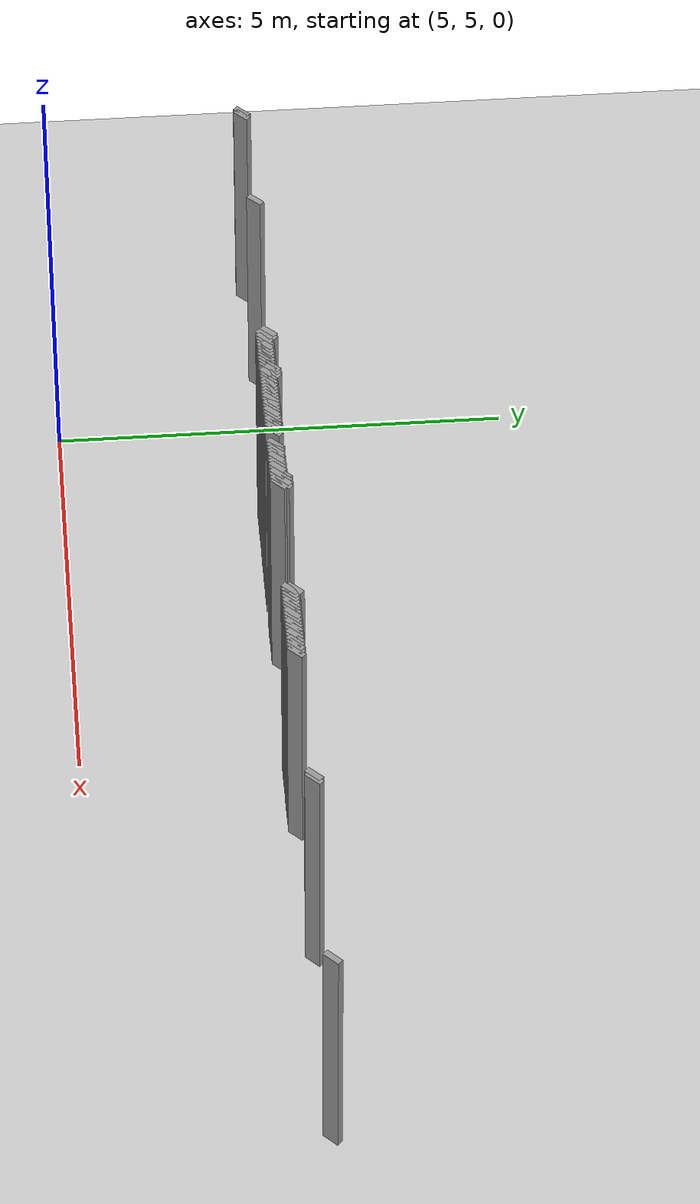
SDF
<sdf version="1.5">
 <world name="default">
  <include><uri>model://ground_plane</uri></include>
  <include><uri>model://sun</uri></include>
  <model name="grey_wall_1556">
   <static>1</static>
   <link name="link">
    <pose>4.2 7.3  1.4 0 0 -0.785398163397</pose>
    <collision name="collision"><geometry><box><size>0.0707106781187 .2  2.8</size></box></geometry></collision>
    <visual name="visual">
     <cast_shadows>0</cast_shadows>
     <geometry><box><size>0.0707106781187 .2  2.8</size></box></geometry>
     <material>
      <script>
       <uri>model://grey_wall/materials/scripts</uri>
       <uri>model://grey_wall/materials/textures</uri>
       <name>vrc/grey_wall</name>
      </script>
     </material>
    </visual>
   </link>
  </model>
  <model name="grey_wall_1557">
   <static>1</static>
   <link name="link">
    <pose>6.35 7.3  1.4 0 0 -0.785398163397</pose>
    <collision name="collision"><geometry><box><size>0.0707106781187 .2  2.8</size></box></geometry></collision>
    <visual name="visual">
     <cast_shadows>0</cast_shadows>
     <geometry><box><size>0.0707106781187 .2  2.8</size></box></geometry>
     <material>
      <script>
       <uri>model://grey_wall/materials/scripts</uri>
       <uri>model://grey_wall/materials/textures</uri>
       <name>vrc/grey_wall</name>
      </script>
     </material>
    </visual>
   </link>
  </model>
  <model name="grey_wall_1558">
   <static>1</static>
   <link name="link">
    <pose>6.4 7.3  1.4 0 0 -0.785398163397</pose>
    <collision name="collision"><geometry><box><size>0.0707106781187 .2  2.8</size></box></geometry></collision>
    <visual name="visual">
     <cast_shadows>0</cast_shadows>
     <geometry><box><size>0.0707106781187 .2  2.8</size></box></geometry>
     <material>
      <script>
       <uri>model://grey_wall/materials/scripts</uri>
       <uri>model://grey_wall/materials/textures</uri>
       <name>vrc/grey_wall</name>
      </script>
     </material>
    </visual>
   </link>
  </model>
  <model name="grey_wall_1559">
   <static>1</static>
   <link name="link">
    <pose>6.9 7.3  1.4 0 0 -0.785398163397</pose>
    <collision name="collision"><geometry><box><size>0.0707106781187 .2  2.8</size></box></geometry></collision>
    <visual name="visual">
     <cast_shadows>0</cast_shadows>
     <geometry><box><size>0.0707106781187 .2  2.8</size></box></geometry>
     <material>
      <script>
       <uri>model://grey_wall/materials/scripts</uri>
       <uri>model://grey_wall/materials/textures</uri>
       <name>vrc/grey_wall</name>
      </script>
     </material>
    </visual>
   </link>
  </model>
  <model name="grey_wall_1560">
   <static>1</static>
   <link name="link">
    <pose>6.95 7.3  1.4 0 0 -0.785398163397</pose>
    <collision name="collision"><geometry><box><size>0.0707106781187 .2  2.8</size></box></geometry></collision>
    <visual name="visual">
     <cast_shadows>0</cast_shadows>
     <geometry><box><size>0.0707106781187 .2  2.8</size></box></geometry>
     <material>
      <script>
       <uri>model://grey_wall/materials/scripts</uri>
       <uri>model://grey_wall/materials/textures</uri>
       <name>vrc/grey_wall</name>
      </script>
     </material>
    </visual>
   </link>
  </model>
  <model name="grey_wall_1561">
   <static>1</static>
   <link name="link">
    <pose>7.0 7.3  1.4 0 0 -0.785398163397</pose>
    <collision name="collision"><geometry><box><size>0.0707106781187 .2  2.8</size></box></geometry></collision>
    <visual name="visual">
     <cast_shadows>0</cast_shadows>
     <geometry><box><size>0.0707106781187 .2  2.8</size></box></geometry>
     <material>
      <script>
       <uri>model://grey_wall/materials/scripts</uri>
       <uri>model://grey_wall/materials/textures</uri>
       <name>vrc/grey_wall</name>
      </script>
     </material>
    </visual>
   </link>
  </model>
  <model name="grey_wall_1562">
   <static>1</static>
   <link name="link">
    <pose>8.55 7.3  1.4 0 0 -0.785398163397</pose>
    <collision name="collision"><geometry><box><size>0.0707106781187 .2  2.8</size></box></geometry></collision>
    <visual name="visual">
     <cast_shadows>0</cast_shadows>
     <geometry><box><size>0.0707106781187 .2  2.8</size></box></geometry>
     <material>
      <script>
       <uri>model://grey_wall/materials/scripts</uri>
       <uri>model://grey_wall/materials/textures</uri>
       <name>vrc/grey_wall</name>
      </script>
     </material>
    </visual>
   </link>
  </model>
  <model name="grey_wall_1563">
   <static>1</static>
   <link name="link">
    <pose>8.6 7.3  1.4 0 0 -0.785398163397</pose>
    <collision name="collision"><geometry><box><size>0.0707106781187 .2  2.8</size></box></geometry></collision>
    <visual name="visual">
     <cast_shadows>0</cast_shadows>
     <geometry><box><size>0.0707106781187 .2  2.8</size></box></geometry>
     <material>
      <script>
       <uri>model://grey_wall/materials/scripts</uri>
       <uri>model://grey_wall/materials/textures</uri>
       <name>vrc/grey_wall</name>
      </script>
     </material>
    </visual>
   </link>
  </model>
  <model name="grey_wall_1564">
   <static>1</static>
   <link name="link">
    <pose>8.65 7.3  1.4 0 0 -0.785398163397</pose>
    <collision name="collision"><geometry><box><size>0.0707106781187 .2  2.8</size></box></geometry></collision>
    <visual name="visual">
     <cast_shadows>0</cast_shadows>
     <geometry><box><size>0.0707106781187 .2  2.8</size></box></geometry>
     <material>
      <script>
       <uri>model://grey_wall/materials/scripts</uri>
       <uri>model://grey_wall/materials/textures</uri>
       <name>vrc/grey_wall</name>
      </script>
     </material>
    </visual>
   </link>
  </model>
  <model name="grey_wall_1565">
   <static>1</static>
   <link name="link">
    <pose>8.7 7.3  1.4 0 0 -0.785398163397</pose>
    <collision name="collision"><geometry><box><size>0.0707106781187 .2  2.8</size></box></geometry></collision>
    <visual name="visual">
     <cast_shadows>0</cast_shadows>
     <geometry><box><size>0.0707106781187 .2  2.8</size></box></geometry>
     <material>
      <script>
       <uri>model://grey_wall/materials/scripts</uri>
       <uri>model://grey_wall/materials/textures</uri>
       <name>vrc/grey_wall</name>
      </script>
     </material>
    </visual>
   </link>
  </model>
  <model name="grey_wall_1566">
   <static>1</static>
   <link name="link">
    <pose>10.25 7.3  1.4 0 0 -0.785398163397</pose>
    <collision name="collision"><geometry><box><size>0.0707106781187 .2  2.8</size></box></geometry></collision>
    <visual name="visual">
     <cast_shadows>0</cast_shadows>
     <geometry><box><size>0.0707106781187 .2  2.8</size></box></geometry>
     <material>
      <script>
       <uri>model://grey_wall/materials/scripts</uri>
       <uri>model://grey_wall/materials/textures</uri>
       <name>vrc/grey_wall</name>
      </script>
     </material>
    </visual>
   </link>
  </model>
  <model name="grey_wall_1567">
   <static>1</static>
   <link name="link">
    <pose>12.85 7.3  1.4 0 0 -0.785398163397</pose>
    <collision name="collision"><geometry><box><size>0.0707106781187 .2  2.8</size></box></geometry></collision>
    <visual name="visual">
     <cast_shadows>0</cast_shadows>
     <geometry><box><size>0.0707106781187 .2  2.8</size></box></geometry>
     <material>
      <script>
       <uri>model://grey_wall/materials/scripts</uri>
       <uri>model://grey_wall/materials/textures</uri>
       <name>vrc/grey_wall</name>
      </script>
     </material>
    </visual>
   </link>
  </model>
  <model name="grey_wall_1568">
   <static>1</static>
   <link name="link">
    <pose>12.9 7.3  1.4 0 0 -0.785398163397</pose>
    <collision name="collision"><geometry><box><size>0.0707106781187 .2  2.8</size></box></geometry></collision>
    <visual name="visual">
     <cast_shadows>0</cast_shadows>
     <geometry><box><size>0.0707106781187 .2  2.8</size></box></geometry>
     <material>
      <script>
       <uri>model://grey_wall/materials/scripts</uri>
       <uri>model://grey_wall/materials/textures</uri>
       <name>vrc/grey_wall</name>
      </script>
     </material>
    </visual>
   </link>
  </model>
  <model name="grey_wall_1569">
   <static>1</static>
   <link name="link">
    <pose>15.25 7.3  1.4 0 0 -0.785398163397</pose>
    <collision name="collision"><geometry><box><size>0.0707106781187 .2  2.8</size></box></geometry></collision>
    <visual name="visual">
     <cast_shadows>0</cast_shadows>
     <geometry><box><size>0.0707106781187 .2  2.8</size></box></geometry>
     <material>
      <script>
       <uri>model://grey_wall/materials/scripts</uri>
       <uri>model://grey_wall/materials/textures</uri>
       <name>vrc/grey_wall</name>
      </script>
     </material>
    </visual>
   </link>
  </model>
  <model name="grey_wall_1570">
   <static>1</static>
   <link name="link">
    <pose>2.7 7.25  1.4 0 0 -0.785398163397</pose>
    <collision name="collision"><geometry><box><size>0.0707106781187 .2  2.8</size></box></geometry></collision>
    <visual name="visual">
     <cast_shadows>0</cast_shadows>
     <geometry><box><size>0.0707106781187 .2  2.8</size></box></geometry>
     <material>
      <script>
       <uri>model://grey_wall/materials/scripts</uri>
       <uri>model://grey_wall/materials/textures</uri>
       <name>vrc/grey_wall</name>
      </script>
     </material>
    </visual>
   </link>
  </model>
  <model name="grey_wall_1571">
   <static>1</static>
   <link name="link">
    <pose>2.75 7.25  1.4 0 0 -0.785398163397</pose>
    <collision name="collision"><geometry><box><size>0.0707106781187 .2  2.8</size></box></geometry></collision>
    <visual name="visual">
     <cast_shadows>0</cast_shadows>
     <geometry><box><size>0.0707106781187 .2  2.8</size></box></geometry>
     <material>
      <script>
       <uri>model://grey_wall/materials/scripts</uri>
       <uri>model://grey_wall/materials/textures</uri>
       <name>vrc/grey_wall</name>
      </script>
     </material>
    </visual>
   </link>
  </model>
  <model name="grey_wall_1572">
   <static>1</static>
   <link name="link">
    <pose>6.4 7.25  1.4 0 0 -0.785398163397</pose>
    <collision name="collision"><geometry><box><size>0.0707106781187 .2  2.8</size></box></geometry></collision>
    <visual name="visual">
     <cast_shadows>0</cast_shadows>
     <geometry><box><size>0.0707106781187 .2  2.8</size></box></geometry>
     <material>
      <script>
       <uri>model://grey_wall/materials/scripts</uri>
       <uri>model://grey_wall/materials/textures</uri>
       <name>vrc/grey_wall</name>
      </script>
     </material>
    </visual>
   </link>
  </model>
  <model name="grey_wall_1573">
   <static>1</static>
   <link name="link">
    <pose>6.45 7.25  1.4 0 0 -0.785398163397</pose>
    <collision name="collision"><geometry><box><size>0.0707106781187 .2  2.8</size></box></geometry></collision>
    <visual name="visual">
     <cast_shadows>0</cast_shadows>
     <geometry><box><size>0.0707106781187 .2  2.8</size></box></geometry>
     <material>
      <script>
       <uri>model://grey_wall/materials/scripts</uri>
       <uri>model://grey_wall/materials/textures</uri>
       <name>vrc/grey_wall</name>
      </script>
     </material>
    </visual>
   </link>
  </model>
  <model name="grey_wall_1574">
   <static>1</static>
   <link name="link">
    <pose>6.5 7.25  1.4 0 0 -0.785398163397</pose>
    <collision name="collision"><geometry><box><size>0.0707106781187 .2  2.8</size></box></geometry></collision>
    <visual name="visual">
     <cast_shadows>0</cast_shadows>
     <geometry><box><size>0.0707106781187 .2  2.8</size></box></geometry>
     <material>
      <script>
       <uri>model://grey_wall/materials/scripts</uri>
       <uri>model://grey_wall/materials/textures</uri>
       <name>vrc/grey_wall</name>
      </script>
     </material>
    </visual>
   </link>
  </model>
  <model name="grey_wall_1575">
   <static>1</static>
   <link name="link">
    <pose>6.55 7.25  1.4 0 0 -0.785398163397</pose>
    <collision name="collision"><geometry><box><size>0.0707106781187 .2  2.8</size></box></geometry></collision>
    <visual name="visual">
     <cast_shadows>0</cast_shadows>
     <geometry><box><size>0.0707106781187 .2  2.8</size></box></geometry>
     <material>
      <script>
       <uri>model://grey_wall/materials/scripts</uri>
       <uri>model://grey_wall/materials/textures</uri>
       <name>vrc/grey_wall</name>
      </script>
     </material>
    </visual>
   </link>
  </model>
  <model name="grey_wall_1576">
   <static>1</static>
   <link name="link">
    <pose>6.6 7.25  1.4 0 0 -0.785398163397</pose>
    <collision name="collision"><geometry><box><size>0.0707106781187 .2  2.8</size></box></geometry></collision>
    <visual name="visual">
     <cast_shadows>0</cast_shadows>
     <geometry><box><size>0.0707106781187 .2  2.8</size></box></geometry>
     <material>
      <script>
       <uri>model://grey_wall/materials/scripts</uri>
       <uri>model://grey_wall/materials/textures</uri>
       <name>vrc/grey_wall</name>
      </script>
     </material>
    </visual>
   </link>
  </model>
  <model name="grey_wall_1577">
   <static>1</static>
   <link name="link">
    <pose>6.65 7.25  1.4 0 0 -0.785398163397</pose>
    <collision name="collision"><geometry><box><size>0.0707106781187 .2  2.8</size></box></geometry></collision>
    <visual name="visual">
     <cast_shadows>0</cast_shadows>
     <geometry><box><size>0.0707106781187 .2  2.8</size></box></geometry>
     <material>
      <script>
       <uri>model://grey_wall/materials/scripts</uri>
       <uri>model://grey_wall/materials/textures</uri>
       <name>vrc/grey_wall</name>
      </script>
     </material>
    </visual>
   </link>
  </model>
  <model name="grey_wall_1578">
   <static>1</static>
   <link name="link">
    <pose>6.7 7.25  1.4 0 0 -0.785398163397</pose>
    <collision name="collision"><geometry><box><size>0.0707106781187 .2  2.8</size></box></geometry></collision>
    <visual name="visual">
     <cast_shadows>0</cast_shadows>
     <geometry><box><size>0.0707106781187 .2  2.8</size></box></geometry>
     <material>
      <script>
       <uri>model://grey_wall/materials/scripts</uri>
       <uri>model://grey_wall/materials/textures</uri>
       <name>vrc/grey_wall</name>
      </script>
     </material>
    </visual>
   </link>
  </model>
  <model name="grey_wall_1579">
   <static>1</static>
   <link name="link">
    <pose>6.75 7.25  1.4 0 0 -0.785398163397</pose>
    <collision name="collision"><geometry><box><size>0.0707106781187 .2  2.8</size></box></geometry></collision>
    <visual name="visual">
     <cast_shadows>0</cast_shadows>
     <geometry><box><size>0.0707106781187 .2  2.8</size></box></geometry>
     <material>
      <script>
       <uri>model://grey_wall/materials/scripts</uri>
       <uri>model://grey_wall/materials/textures</uri>
       <name>vrc/grey_wall</name>
      </script>
     </material>
    </visual>
   </link>
  </model>
  <model name="grey_wall_1580">
   <static>1</static>
   <link name="link">
    <pose>6.8 7.25  1.4 0 0 -0.785398163397</pose>
    <collision name="collision"><geometry><box><size>0.0707106781187 .2  2.8</size></box></geometry></collision>
    <visual name="visual">
     <cast_shadows>0</cast_shadows>
     <geometry><box><size>0.0707106781187 .2  2.8</size></box></geometry>
     <material>
      <script>
       <uri>model://grey_wall/materials/scripts</uri>
       <uri>model://grey_wall/materials/textures</uri>
       <name>vrc/grey_wall</name>
      </script>
     </material>
    </visual>
   </link>
  </model>
  <model name="grey_wall_1581">
   <static>1</static>
   <link name="link">
    <pose>6.85 7.25  1.4 0 0 -0.785398163397</pose>
    <collision name="collision"><geometry><box><size>0.0707106781187 .2  2.8</size></box></geometry></collision>
    <visual name="visual">
     <cast_shadows>0</cast_shadows>
     <geometry><box><size>0.0707106781187 .2  2.8</size></box></geometry>
     <material>
      <script>
       <uri>model://grey_wall/materials/scripts</uri>
       <uri>model://grey_wall/materials/textures</uri>
       <name>vrc/grey_wall</name>
      </script>
     </material>
    </visual>
   </link>
  </model>
  <model name="grey_wall_1582">
   <static>1</static>
   <link name="link">
    <pose>6.9 7.25  1.4 0 0 -0.785398163397</pose>
    <collision name="collision"><geometry><box><size>0.0707106781187 .2  2.8</size></box></geometry></collision>
    <visual name="visual">
     <cast_shadows>0</cast_shadows>
     <geometry><box><size>0.0707106781187 .2  2.8</size></box></geometry>
     <material>
      <script>
       <uri>model://grey_wall/materials/scripts</uri>
       <uri>model://grey_wall/materials/textures</uri>
       <name>vrc/grey_wall</name>
      </script>
     </material>
    </visual>
   </link>
  </model>
  <model name="grey_wall_1583">
   <static>1</static>
   <link name="link">
    <pose>7.0 7.25  1.4 0 0 -0.785398163397</pose>
    <collision name="collision"><geometry><box><size>0.0707106781187 .2  2.8</size></box></geometry></collision>
    <visual name="visual">
     <cast_shadows>0</cast_shadows>
     <geometry><box><size>0.0707106781187 .2  2.8</size></box></geometry>
     <material>
      <script>
       <uri>model://grey_wall/materials/scripts</uri>
       <uri>model://grey_wall/materials/textures</uri>
       <name>vrc/grey_wall</name>
      </script>
     </material>
    </visual>
   </link>
  </model>
  <model name="grey_wall_1584">
   <static>1</static>
   <link name="link">
    <pose>7.05 7.25  1.4 0 0 -0.785398163397</pose>
    <collision name="collision"><geometry><box><size>0.0707106781187 .2  2.8</size></box></geometry></collision>
    <visual name="visual">
     <cast_shadows>0</cast_shadows>
     <geometry><box><size>0.0707106781187 .2  2.8</size></box></geometry>
     <material>
      <script>
       <uri>model://grey_wall/materials/scripts</uri>
       <uri>model://grey_wall/materials/textures</uri>
       <name>vrc/grey_wall</name>
      </script>
     </material>
    </visual>
   </link>
  </model>
  <model name="grey_wall_1585">
   <static>1</static>
   <link name="link">
    <pose>7.1 7.25  1.4 0 0 -0.785398163397</pose>
    <collision name="collision"><geometry><box><size>0.0707106781187 .2  2.8</size></box></geometry></collision>
    <visual name="visual">
     <cast_shadows>0</cast_shadows>
     <geometry><box><size>0.0707106781187 .2  2.8</size></box></geometry>
     <material>
      <script>
       <uri>model://grey_wall/materials/scripts</uri>
       <uri>model://grey_wall/materials/textures</uri>
       <name>vrc/grey_wall</name>
      </script>
     </material>
    </visual>
   </link>
  </model>
  <model name="grey_wall_1586">
   <static>1</static>
   <link name="link">
    <pose>7.15 7.25  1.4 0 0 -0.785398163397</pose>
    <collision name="collision"><geometry><box><size>0.0707106781187 .2  2.8</size></box></geometry></collision>
    <visual name="visual">
     <cast_shadows>0</cast_shadows>
     <geometry><box><size>0.0707106781187 .2  2.8</size></box></geometry>
     <material>
      <script>
       <uri>model://grey_wall/materials/scripts</uri>
       <uri>model://grey_wall/materials/textures</uri>
       <name>vrc/grey_wall</name>
      </script>
     </material>
    </visual>
   </link>
  </model>
  <model name="grey_wall_1587">
   <static>1</static>
   <link name="link">
    <pose>7.2 7.25  1.4 0 0 -0.785398163397</pose>
    <collision name="collision"><geometry><box><size>0.0707106781187 .2  2.8</size></box></geometry></collision>
    <visual name="visual">
     <cast_shadows>0</cast_shadows>
     <geometry><box><size>0.0707106781187 .2  2.8</size></box></geometry>
     <material>
      <script>
       <uri>model://grey_wall/materials/scripts</uri>
       <uri>model://grey_wall/materials/textures</uri>
       <name>vrc/grey_wall</name>
      </script>
     </material>
    </visual>
   </link>
  </model>
  <model name="grey_wall_1588">
   <static>1</static>
   <link name="link">
    <pose>7.25 7.25  1.4 0 0 -0.785398163397</pose>
    <collision name="collision"><geometry><box><size>0.0707106781187 .2  2.8</size></box></geometry></collision>
    <visual name="visual">
     <cast_shadows>0</cast_shadows>
     <geometry><box><size>0.0707106781187 .2  2.8</size></box></geometry>
     <material>
      <script>
       <uri>model://grey_wall/materials/scripts</uri>
       <uri>model://grey_wall/materials/textures</uri>
       <name>vrc/grey_wall</name>
      </script>
     </material>
    </visual>
   </link>
  </model>
  <model name="grey_wall_1589">
   <static>1</static>
   <link name="link">
    <pose>7.3 7.25  1.4 0 0 -0.785398163397</pose>
    <collision name="collision"><geometry><box><size>0.0707106781187 .2  2.8</size></box></geometry></collision>
    <visual name="visual">
     <cast_shadows>0</cast_shadows>
     <geometry><box><size>0.0707106781187 .2  2.8</size></box></geometry>
     <material>
      <script>
       <uri>model://grey_wall/materials/scripts</uri>
       <uri>model://grey_wall/materials/textures</uri>
       <name>vrc/grey_wall</name>
      </script>
     </material>
    </visual>
   </link>
  </model>
  <model name="grey_wall_1590">
   <static>1</static>
   <link name="link">
    <pose>7.35 7.25  1.4 0 0 -0.785398163397</pose>
    <collision name="collision"><geometry><box><size>0.0707106781187 .2  2.8</size></box></geometry></collision>
    <visual name="visual">
     <cast_shadows>0</cast_shadows>
     <geometry><box><size>0.0707106781187 .2  2.8</size></box></geometry>
     <material>
      <script>
       <uri>model://grey_wall/materials/scripts</uri>
       <uri>model://grey_wall/materials/textures</uri>
       <name>vrc/grey_wall</name>
      </script>
     </material>
    </visual>
   </link>
  </model>
  <model name="grey_wall_1591">
   <static>1</static>
   <link name="link">
    <pose>7.4 7.25  1.4 0 0 -0.785398163397</pose>
    <collision name="collision"><geometry><box><size>0.0707106781187 .2  2.8</size></box></geometry></collision>
    <visual name="visual">
     <cast_shadows>0</cast_shadows>
     <geometry><box><size>0.0707106781187 .2  2.8</size></box></geometry>
     <material>
      <script>
       <uri>model://grey_wall/materials/scripts</uri>
       <uri>model://grey_wall/materials/textures</uri>
       <name>vrc/grey_wall</name>
      </script>
     </material>
    </visual>
   </link>
  </model>
  <model name="grey_wall_1592">
   <static>1</static>
   <link name="link">
    <pose>7.45 7.25  1.4 0 0 -0.785398163397</pose>
    <collision name="collision"><geometry><box><size>0.0707106781187 .2  2.8</size></box></geometry></collision>
    <visual name="visual">
     <cast_shadows>0</cast_shadows>
     <geometry><box><size>0.0707106781187 .2  2.8</size></box></geometry>
     <material>
      <script>
       <uri>model://grey_wall/materials/scripts</uri>
       <uri>model://grey_wall/materials/textures</uri>
       <name>vrc/grey_wall</name>
      </script>
     </material>
    </visual>
   </link>
  </model>
  <model name="grey_wall_1593">
   <static>1</static>
   <link name="link">
    <pose>7.5 7.25  1.4 0 0 -0.785398163397</pose>
    <collision name="collision"><geometry><box><size>0.0707106781187 .2  2.8</size></box></geometry></collision>
    <visual name="visual">
     <cast_shadows>0</cast_shadows>
     <geometry><box><size>0.0707106781187 .2  2.8</size></box></geometry>
     <material>
      <script>
       <uri>model://grey_wall/materials/scripts</uri>
       <uri>model://grey_wall/materials/textures</uri>
       <name>vrc/grey_wall</name>
      </script>
     </material>
    </visual>
   </link>
  </model>
  <model name="grey_wall_1594">
   <static>1</static>
   <link name="link">
    <pose>7.55 7.25  1.4 0 0 -0.785398163397</pose>
    <collision name="collision"><geometry><box><size>0.0707106781187 .2  2.8</size></box></geometry></collision>
    <visual name="visual">
     <cast_shadows>0</cast_shadows>
     <geometry><box><size>0.0707106781187 .2  2.8</size></box></geometry>
     <material>
      <script>
       <uri>model://grey_wall/materials/scripts</uri>
       <uri>model://grey_wall/materials/textures</uri>
       <name>vrc/grey_wall</name>
      </script>
     </material>
    </visual>
   </link>
  </model>
  <model name="grey_wall_1595">
   <static>1</static>
   <link name="link">
    <pose>7.6 7.25  1.4 0 0 -0.785398163397</pose>
    <collision name="collision"><geometry><box><size>0.0707106781187 .2  2.8</size></box></geometry></collision>
    <visual name="visual">
     <cast_shadows>0</cast_shadows>
     <geometry><box><size>0.0707106781187 .2  2.8</size></box></geometry>
     <material>
      <script>
       <uri>model://grey_wall/materials/scripts</uri>
       <uri>model://grey_wall/materials/textures</uri>
       <name>vrc/grey_wall</name>
      </script>
     </material>
    </visual>
   </link>
  </model>
  <model name="grey_wall_1596">
   <static>1</static>
   <link name="link">
    <pose>7.65 7.25  1.4 0 0 -0.785398163397</pose>
    <collision name="collision"><geometry><box><size>0.0707106781187 .2  2.8</size></box></geometry></collision>
    <visual name="visual">
     <cast_shadows>0</cast_shadows>
     <geometry><box><size>0.0707106781187 .2  2.8</size></box></geometry>
     <material>
      <script>
       <uri>model://grey_wall/materials/scripts</uri>
       <uri>model://grey_wall/materials/textures</uri>
       <name>vrc/grey_wall</name>
      </script>
     </material>
    </visual>
   </link>
  </model>
  <model name="grey_wall_1597">
   <static>1</static>
   <link name="link">
    <pose>7.7 7.25  1.4 0 0 -0.785398163397</pose>
    <collision name="collision"><geometry><box><size>0.0707106781187 .2  2.8</size></box></geometry></collision>
    <visual name="visual">
     <cast_shadows>0</cast_shadows>
     <geometry><box><size>0.0707106781187 .2  2.8</size></box></geometry>
     <material>
      <script>
       <uri>model://grey_wall/materials/scripts</uri>
       <uri>model://grey_wall/materials/textures</uri>
       <name>vrc/grey_wall</name>
      </script>
     </material>
    </visual>
   </link>
  </model>
  <model name="grey_wall_1598">
   <static>1</static>
   <link name="link">
    <pose>7.75 7.25  1.4 0 0 -0.785398163397</pose>
    <collision name="collision"><geometry><box><size>0.0707106781187 .2  2.8</size></box></geometry></collision>
    <visual name="visual">
     <cast_shadows>0</cast_shadows>
     <geometry><box><size>0.0707106781187 .2  2.8</size></box></geometry>
     <material>
      <script>
       <uri>model://grey_wall/materials/scripts</uri>
       <uri>model://grey_wall/materials/textures</uri>
       <name>vrc/grey_wall</name>
      </script>
     </material>
    </visual>
   </link>
  </model>
  <model name="grey_wall_1599">
   <static>1</static>
   <link name="link">
    <pose>7.8 7.25  1.4 0 0 -0.785398163397</pose>
    <collision name="collision"><geometry><box><size>0.0707106781187 .2  2.8</size></box></geometry></collision>
    <visual name="visual">
     <cast_shadows>0</cast_shadows>
     <geometry><box><size>0.0707106781187 .2  2.8</size></box></geometry>
     <material>
      <script>
       <uri>model://grey_wall/materials/scripts</uri>
       <uri>model://grey_wall/materials/textures</uri>
       <name>vrc/grey_wall</name>
      </script>
     </material>
    </visual>
   </link>
  </model>
  <model name="grey_wall_1600">
   <static>1</static>
   <link name="link">
    <pose>7.85 7.25  1.4 0 0 -0.785398163397</pose>
    <collision name="collision"><geometry><box><size>0.0707106781187 .2  2.8</size></box></geometry></collision>
    <visual name="visual">
     <cast_shadows>0</cast_shadows>
     <geometry><box><size>0.0707106781187 .2  2.8</size></box></geometry>
     <material>
      <script>
       <uri>model://grey_wall/materials/scripts</uri>
       <uri>model://grey_wall/materials/textures</uri>
       <name>vrc/grey_wall</name>
      </script>
     </material>
    </visual>
   </link>
  </model>
  <model name="grey_wall_1601">
   <static>1</static>
   <link name="link">
    <pose>7.9 7.25  1.4 0 0 -0.785398163397</pose>
    <collision name="collision"><geometry><box><size>0.0707106781187 .2  2.8</size></box></geometry></collision>
    <visual name="visual">
     <cast_shadows>0</cast_shadows>
     <geometry><box><size>0.0707106781187 .2  2.8</size></box></geometry>
     <material>
      <script>
       <uri>model://grey_wall/materials/scripts</uri>
       <uri>model://grey_wall/materials/textures</uri>
       <name>vrc/grey_wall</name>
      </script>
     </material>
    </visual>
   </link>
  </model>
  <model name="grey_wall_1602">
   <static>1</static>
   <link name="link">
    <pose>8.1 7.25  1.4 0 0 -0.785398163397</pose>
    <collision name="collision"><geometry><box><size>0.0707106781187 .2  2.8</size></box></geometry></collision>
    <visual name="visual">
     <cast_shadows>0</cast_shadows>
     <geometry><box><size>0.0707106781187 .2  2.8</size></box></geometry>
     <material>
      <script>
       <uri>model://grey_wall/materials/scripts</uri>
       <uri>model://grey_wall/materials/textures</uri>
       <name>vrc/grey_wall</name>
      </script>
     </material>
    </visual>
   </link>
  </model>
  <model name="grey_wall_1603">
   <static>1</static>
   <link name="link">
    <pose>8.15 7.25  1.4 0 0 -0.785398163397</pose>
    <collision name="collision"><geometry><box><size>0.0707106781187 .2  2.8</size></box></geometry></collision>
    <visual name="visual">
     <cast_shadows>0</cast_shadows>
     <geometry><box><size>0.0707106781187 .2  2.8</size></box></geometry>
     <material>
      <script>
       <uri>model://grey_wall/materials/scripts</uri>
       <uri>model://grey_wall/materials/textures</uri>
       <name>vrc/grey_wall</name>
      </script>
     </material>
    </visual>
   </link>
  </model>
  <model name="grey_wall_1604">
   <static>1</static>
   <link name="link">
    <pose>8.2 7.25  1.4 0 0 -0.785398163397</pose>
    <collision name="collision"><geometry><box><size>0.0707106781187 .2  2.8</size></box></geometry></collision>
    <visual name="visual">
     <cast_shadows>0</cast_shadows>
     <geometry><box><size>0.0707106781187 .2  2.8</size></box></geometry>
     <material>
      <script>
       <uri>model://grey_wall/materials/scripts</uri>
       <uri>model://grey_wall/materials/textures</uri>
       <name>vrc/grey_wall</name>
      </script>
     </material>
    </visual>
   </link>
  </model>
  <model name="grey_wall_1605">
   <static>1</static>
   <link name="link">
    <pose>8.25 7.25  1.4 0 0 -0.785398163397</pose>
    <collision name="collision"><geometry><box><size>0.0707106781187 .2  2.8</size></box></geometry></collision>
    <visual name="visual">
     <cast_shadows>0</cast_shadows>
     <geometry><box><size>0.0707106781187 .2  2.8</size></box></geometry>
     <material>
      <script>
       <uri>model://grey_wall/materials/scripts</uri>
       <uri>model://grey_wall/materials/textures</uri>
       <name>vrc/grey_wall</name>
      </script>
     </material>
    </visual>
   </link>
  </model>
  <model name="grey_wall_1606">
   <static>1</static>
   <link name="link">
    <pose>8.3 7.25  1.4 0 0 -0.785398163397</pose>
    <collision name="collision"><geometry><box><size>0.0707106781187 .2  2.8</size></box></geometry></collision>
    <visual name="visual">
     <cast_shadows>0</cast_shadows>
     <geometry><box><size>0.0707106781187 .2  2.8</size></box></geometry>
     <material>
      <script>
       <uri>model://grey_wall/materials/scripts</uri>
       <uri>model://grey_wall/materials/textures</uri>
       <name>vrc/grey_wall</name>
      </script>
     </material>
    </visual>
   </link>
  </model>
  <model name="grey_wall_1607">
   <static>1</static>
   <link name="link">
    <pose>8.35 7.25  1.4 0 0 -0.785398163397</pose>
    <collision name="collision"><geometry><box><size>0.0707106781187 .2  2.8</size></box></geometry></collision>
    <visual name="visual">
     <cast_shadows>0</cast_shadows>
     <geometry><box><size>0.0707106781187 .2  2.8</size></box></geometry>
     <material>
      <script>
       <uri>model://grey_wall/materials/scripts</uri>
       <uri>model://grey_wall/materials/textures</uri>
       <name>vrc/grey_wall</name>
      </script>
     </material>
    </visual>
   </link>
  </model>
  <model name="grey_wall_1608">
   <static>1</static>
   <link name="link">
    <pose>8.4 7.25  1.4 0 0 -0.785398163397</pose>
    <collision name="collision"><geometry><box><size>0.0707106781187 .2  2.8</size></box></geometry></collision>
    <visual name="visual">
     <cast_shadows>0</cast_shadows>
     <geometry><box><size>0.0707106781187 .2  2.8</size></box></geometry>
     <material>
      <script>
       <uri>model://grey_wall/materials/scripts</uri>
       <uri>model://grey_wall/materials/textures</uri>
       <name>vrc/grey_wall</name>
      </script>
     </material>
    </visual>
   </link>
  </model>
  <model name="grey_wall_1609">
   <static>1</static>
   <link name="link">
    <pose>8.45 7.25  1.4 0 0 -0.785398163397</pose>
    <collision name="collision"><geometry><box><size>0.0707106781187 .2  2.8</size></box></geometry></collision>
    <visual name="visual">
     <cast_shadows>0</cast_shadows>
     <geometry><box><size>0.0707106781187 .2  2.8</size></box></geometry>
     <material>
      <script>
       <uri>model://grey_wall/materials/scripts</uri>
       <uri>model://grey_wall/materials/textures</uri>
       <name>vrc/grey_wall</name>
      </script>
     </material>
    </visual>
   </link>
  </model>
  <model name="grey_wall_1610">
   <static>1</static>
   <link name="link">
    <pose>8.5 7.25  1.4 0 0 -0.785398163397</pose>
    <collision name="collision"><geometry><box><size>0.0707106781187 .2  2.8</size></box></geometry></collision>
    <visual name="visual">
     <cast_shadows>0</cast_shadows>
     <geometry><box><size>0.0707106781187 .2  2.8</size></box></geometry>
     <material>
      <script>
       <uri>model://grey_wall/materials/scripts</uri>
       <uri>model://grey_wall/materials/textures</uri>
       <name>vrc/grey_wall</name>
      </script>
     </material>
    </visual>
   </link>
  </model>
  <model name="grey_wall_1611">
   <static>1</static>
   <link name="link">
    <pose>8.55 7.25  1.4 0 0 -0.785398163397</pose>
    <collision name="collision"><geometry><box><size>0.0707106781187 .2  2.8</size></box></geometry></collision>
    <visual name="visual">
     <cast_shadows>0</cast_shadows>
     <geometry><box><size>0.0707106781187 .2  2.8</size></box></geometry>
     <material>
      <script>
       <uri>model://grey_wall/materials/scripts</uri>
       <uri>model://grey_wall/materials/textures</uri>
       <name>vrc/grey_wall</name>
      </script>
     </material>
    </visual>
   </link>
  </model>
  <model name="grey_wall_1612">
   <static>1</static>
   <link name="link">
    <pose>8.6 7.25  1.4 0 0 -0.785398163397</pose>
    <collision name="collision"><geometry><box><size>0.0707106781187 .2  2.8</size></box></geometry></collision>
    <visual name="visual">
     <cast_shadows>0</cast_shadows>
     <geometry><box><size>0.0707106781187 .2  2.8</size></box></geometry>
     <material>
      <script>
       <uri>model://grey_wall/materials/scripts</uri>
       <uri>model://grey_wall/materials/textures</uri>
       <name>vrc/grey_wall</name>
      </script>
     </material>
    </visual>
   </link>
  </model>
  <model name="grey_wall_1613">
   <static>1</static>
   <link name="link">
    <pose>8.65 7.25  1.4 0 0 -0.785398163397</pose>
    <collision name="collision"><geometry><box><size>0.0707106781187 .2  2.8</size></box></geometry></collision>
    <visual name="visual">
     <cast_shadows>0</cast_shadows>
     <geometry><box><size>0.0707106781187 .2  2.8</size></box></geometry>
     <material>
      <script>
       <uri>model://grey_wall/materials/scripts</uri>
       <uri>model://grey_wall/materials/textures</uri>
       <name>vrc/grey_wall</name>
      </script>
     </material>
    </visual>
   </link>
  </model>
  <model name="grey_wall_1614">
   <static>1</static>
   <link name="link">
    <pose>8.7 7.25  1.4 0 0 -0.785398163397</pose>
    <collision name="collision"><geometry><box><size>0.0707106781187 .2  2.8</size></box></geometry></collision>
    <visual name="visual">
     <cast_shadows>0</cast_shadows>
     <geometry><box><size>0.0707106781187 .2  2.8</size></box></geometry>
     <material>
      <script>
       <uri>model://grey_wall/materials/scripts</uri>
       <uri>model://grey_wall/materials/textures</uri>
       <name>vrc/grey_wall</name>
      </script>
     </material>
    </visual>
   </link>
  </model>
  <model name="grey_wall_1615">
   <static>1</static>
   <link name="link">
    <pose>10.25 7.25  1.4 0 0 -0.785398163397</pose>
    <collision name="collision"><geometry><box><size>0.0707106781187 .2  2.8</size></box></geometry></collision>
    <visual name="visual">
     <cast_shadows>0</cast_shadows>
     <geometry><box><size>0.0707106781187 .2  2.8</size></box></geometry>
     <material>
      <script>
       <uri>model://grey_wall/materials/scripts</uri>
       <uri>model://grey_wall/materials/textures</uri>
       <name>vrc/grey_wall</name>
      </script>
     </material>
    </visual>
   </link>
  </model>
  <model name="grey_wall_1616">
   <static>1</static>
   <link name="link">
    <pose>10.3 7.25  1.4 0 0 -0.785398163397</pose>
    <collision name="collision"><geometry><box><size>0.0707106781187 .2  2.8</size></box></geometry></collision>
    <visual name="visual">
     <cast_shadows>0</cast_shadows>
     <geometry><box><size>0.0707106781187 .2  2.8</size></box></geometry>
     <material>
      <script>
       <uri>model://grey_wall/materials/scripts</uri>
       <uri>model://grey_wall/materials/textures</uri>
       <name>vrc/grey_wall</name>
      </script>
     </material>
    </visual>
   </link>
  </model>
  <model name="grey_wall_1617">
   <static>1</static>
   <link name="link">
    <pose>10.35 7.25  1.4 0 0 -0.785398163397</pose>
    <collision name="collision"><geometry><box><size>0.0707106781187 .2  2.8</size></box></geometry></collision>
    <visual name="visual">
     <cast_shadows>0</cast_shadows>
     <geometry><box><size>0.0707106781187 .2  2.8</size></box></geometry>
     <material>
      <script>
       <uri>model://grey_wall/materials/scripts</uri>
       <uri>model://grey_wall/materials/textures</uri>
       <name>vrc/grey_wall</name>
      </script>
     </material>
    </visual>
   </link>
  </model>
  <model name="grey_wall_1618">
   <static>1</static>
   <link name="link">
    <pose>10.4 7.25  1.4 0 0 -0.785398163397</pose>
    <collision name="collision"><geometry><box><size>0.0707106781187 .2  2.8</size></box></geometry></collision>
    <visual name="visual">
     <cast_shadows>0</cast_shadows>
     <geometry><box><size>0.0707106781187 .2  2.8</size></box></geometry>
     <material>
      <script>
       <uri>model://grey_wall/materials/scripts</uri>
       <uri>model://grey_wall/materials/textures</uri>
       <name>vrc/grey_wall</name>
      </script>
     </material>
    </visual>
   </link>
  </model>
  <model name="grey_wall_1619">
   <static>1</static>
   <link name="link">
    <pose>10.45 7.25  1.4 0 0 -0.785398163397</pose>
    <collision name="collision"><geometry><box><size>0.0707106781187 .2  2.8</size></box></geometry></collision>
    <visual name="visual">
     <cast_shadows>0</cast_shadows>
     <geometry><box><size>0.0707106781187 .2  2.8</size></box></geometry>
     <material>
      <script>
       <uri>model://grey_wall/materials/scripts</uri>
       <uri>model://grey_wall/materials/textures</uri>
       <name>vrc/grey_wall</name>
      </script>
     </material>
    </visual>
   </link>
  </model>
  <model name="grey_wall_1620">
   <static>1</static>
   <link name="link">
    <pose>10.5 7.25  1.4 0 0 -0.785398163397</pose>
    <collision name="collision"><geometry><box><size>0.0707106781187 .2  2.8</size></box></geometry></collision>
    <visual name="visual">
     <cast_shadows>0</cast_shadows>
     <geometry><box><size>0.0707106781187 .2  2.8</size></box></geometry>
     <material>
      <script>
       <uri>model://grey_wall/materials/scripts</uri>
       <uri>model://grey_wall/materials/textures</uri>
       <name>vrc/grey_wall</name>
      </script>
     </material>
    </visual>
   </link>
  </model>
  <model name="grey_wall_1621">
   <static>1</static>
   <link name="link">
    <pose>10.55 7.25  1.4 0 0 -0.785398163397</pose>
    <collision name="collision"><geometry><box><size>0.0707106781187 .2  2.8</size></box></geometry></collision>
    <visual name="visual">
     <cast_shadows>0</cast_shadows>
     <geometry><box><size>0.0707106781187 .2  2.8</size></box></geometry>
     <material>
      <script>
       <uri>model://grey_wall/materials/scripts</uri>
       <uri>model://grey_wall/materials/textures</uri>
       <name>vrc/grey_wall</name>
      </script>
     </material>
    </visual>
   </link>
  </model>
  <model name="grey_wall_1622">
   <static>1</static>
   <link name="link">
    <pose>10.6 7.25  1.4 0 0 -0.785398163397</pose>
    <collision name="collision"><geometry><box><size>0.0707106781187 .2  2.8</size></box></geometry></collision>
    <visual name="visual">
     <cast_shadows>0</cast_shadows>
     <geometry><box><size>0.0707106781187 .2  2.8</size></box></geometry>
     <material>
      <script>
       <uri>model://grey_wall/materials/scripts</uri>
       <uri>model://grey_wall/materials/textures</uri>
       <name>vrc/grey_wall</name>
      </script>
     </material>
    </visual>
   </link>
  </model>
  <model name="grey_wall_1623">
   <static>1</static>
   <link name="link">
    <pose>10.65 7.25  1.4 0 0 -0.785398163397</pose>
    <collision name="collision"><geometry><box><size>0.0707106781187 .2  2.8</size></box></geometry></collision>
    <visual name="visual">
     <cast_shadows>0</cast_shadows>
     <geometry><box><size>0.0707106781187 .2  2.8</size></box></geometry>
     <material>
      <script>
       <uri>model://grey_wall/materials/scripts</uri>
       <uri>model://grey_wall/materials/textures</uri>
       <name>vrc/grey_wall</name>
      </script>
     </material>
    </visual>
   </link>
  </model>
  <model name="grey_wall_1624">
   <static>1</static>
   <link name="link">
    <pose>10.7 7.25  1.4 0 0 -0.785398163397</pose>
    <collision name="collision"><geometry><box><size>0.0707106781187 .2  2.8</size></box></geometry></collision>
    <visual name="visual">
     <cast_shadows>0</cast_shadows>
     <geometry><box><size>0.0707106781187 .2  2.8</size></box></geometry>
     <material>
      <script>
       <uri>model://grey_wall/materials/scripts</uri>
       <uri>model://grey_wall/materials/textures</uri>
       <name>vrc/grey_wall</name>
      </script>
     </material>
    </visual>
   </link>
  </model>
  <model name="grey_wall_1625">
   <static>1</static>
   <link name="link">
    <pose>10.75 7.25  1.4 0 0 -0.785398163397</pose>
    <collision name="collision"><geometry><box><size>0.0707106781187 .2  2.8</size></box></geometry></collision>
    <visual name="visual">
     <cast_shadows>0</cast_shadows>
     <geometry><box><size>0.0707106781187 .2  2.8</size></box></geometry>
     <material>
      <script>
       <uri>model://grey_wall/materials/scripts</uri>
       <uri>model://grey_wall/materials/textures</uri>
       <name>vrc/grey_wall</name>
      </script>
     </material>
    </visual>
   </link>
  </model>
  <model name="grey_wall_1626">
   <static>1</static>
   <link name="link">
    <pose>10.8 7.25  1.4 0 0 -0.785398163397</pose>
    <collision name="collision"><geometry><box><size>0.0707106781187 .2  2.8</size></box></geometry></collision>
    <visual name="visual">
     <cast_shadows>0</cast_shadows>
     <geometry><box><size>0.0707106781187 .2  2.8</size></box></geometry>
     <material>
      <script>
       <uri>model://grey_wall/materials/scripts</uri>
       <uri>model://grey_wall/materials/textures</uri>
       <name>vrc/grey_wall</name>
      </script>
     </material>
    </visual>
   </link>
  </model>
  <model name="grey_wall_1627">
   <static>1</static>
   <link name="link">
    <pose>10.85 7.25  1.4 0 0 -0.785398163397</pose>
    <collision name="collision"><geometry><box><size>0.0707106781187 .2  2.8</size></box></geometry></collision>
    <visual name="visual">
     <cast_shadows>0</cast_shadows>
     <geometry><box><size>0.0707106781187 .2  2.8</size></box></geometry>
     <material>
      <script>
       <uri>model://grey_wall/materials/scripts</uri>
       <uri>model://grey_wall/materials/textures</uri>
       <name>vrc/grey_wall</name>
      </script>
     </material>
    </visual>
   </link>
  </model>
  <model name="grey_wall_1628">
   <static>1</static>
   <link name="link">
    <pose>10.9 7.25  1.4 0 0 -0.785398163397</pose>
    <collision name="collision"><geometry><box><size>0.0707106781187 .2  2.8</size></box></geometry></collision>
    <visual name="visual">
     <cast_shadows>0</cast_shadows>
     <geometry><box><size>0.0707106781187 .2  2.8</size></box></geometry>
     <material>
      <script>
       <uri>model://grey_wall/materials/scripts</uri>
       <uri>model://grey_wall/materials/textures</uri>
       <name>vrc/grey_wall</name>
      </script>
     </material>
    </visual>
   </link>
  </model>
  <model name="grey_wall_1629">
   <static>1</static>
   <link name="link">
    <pose>10.95 7.25  1.4 0 0 -0.785398163397</pose>
    <collision name="collision"><geometry><box><size>0.0707106781187 .2  2.8</size></box></geometry></collision>
    <visual name="visual">
     <cast_shadows>0</cast_shadows>
     <geometry><box><size>0.0707106781187 .2  2.8</size></box></geometry>
     <material>
      <script>
       <uri>model://grey_wall/materials/scripts</uri>
       <uri>model://grey_wall/materials/textures</uri>
       <name>vrc/grey_wall</name>
      </script>
     </material>
    </visual>
   </link>
  </model>
  <model name="grey_wall_1630">
   <static>1</static>
   <link name="link">
    <pose>11.0 7.25  1.4 0 0 -0.785398163397</pose>
    <collision name="collision"><geometry><box><size>0.0707106781187 .2  2.8</size></box></geometry></collision>
    <visual name="visual">
     <cast_shadows>0</cast_shadows>
     <geometry><box><size>0.0707106781187 .2  2.8</size></box></geometry>
     <material>
      <script>
       <uri>model://grey_wall/materials/scripts</uri>
       <uri>model://grey_wall/materials/textures</uri>
       <name>vrc/grey_wall</name>
      </script>
     </material>
    </visual>
   </link>
  </model>
  <model name="grey_wall_1631">
   <static>1</static>
   <link name="link">
    <pose>11.05 7.25  1.4 0 0 -0.785398163397</pose>
    <collision name="collision"><geometry><box><size>0.0707106781187 .2  2.8</size></box></geometry></collision>
    <visual name="visual">
     <cast_shadows>0</cast_shadows>
     <geometry><box><size>0.0707106781187 .2  2.8</size></box></geometry>
     <material>
      <script>
       <uri>model://grey_wall/materials/scripts</uri>
       <uri>model://grey_wall/materials/textures</uri>
       <name>vrc/grey_wall</name>
      </script>
     </material>
    </visual>
   </link>
  </model>
  <model name="grey_wall_1632">
   <static>1</static>
   <link name="link">
    <pose>11.1 7.25  1.4 0 0 -0.785398163397</pose>
    <collision name="collision"><geometry><box><size>0.0707106781187 .2  2.8</size></box></geometry></collision>
    <visual name="visual">
     <cast_shadows>0</cast_shadows>
     <geometry><box><size>0.0707106781187 .2  2.8</size></box></geometry>
     <material>
      <script>
       <uri>model://grey_wall/materials/scripts</uri>
       <uri>model://grey_wall/materials/textures</uri>
       <name>vrc/grey_wall</name>
      </script>
     </material>
    </visual>
   </link>
  </model>
  <model name="grey_wall_1633">
   <static>1</static>
   <link name="link">
    <pose>11.15 7.25  1.4 0 0 -0.785398163397</pose>
    <collision name="collision"><geometry><box><size>0.0707106781187 .2  2.8</size></box></geometry></collision>
    <visual name="visual">
     <cast_shadows>0</cast_shadows>
     <geometry><box><size>0.0707106781187 .2  2.8</size></box></geometry>
     <material>
      <script>
       <uri>model://grey_wall/materials/scripts</uri>
       <uri>model://grey_wall/materials/textures</uri>
       <name>vrc/grey_wall</name>
      </script>
     </material>
    </visual>
   </link>
  </model>
 </world>
</sdf>
